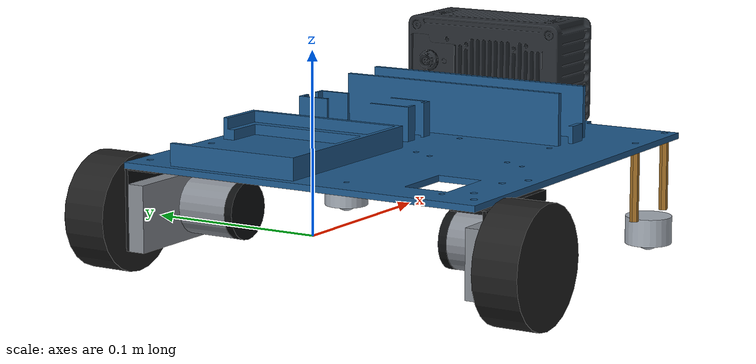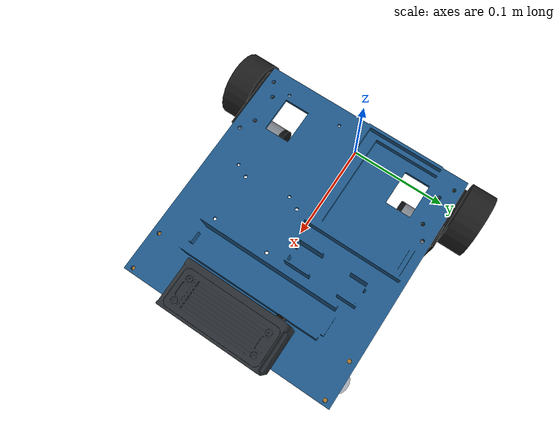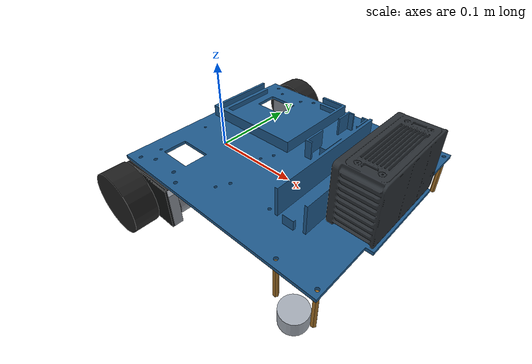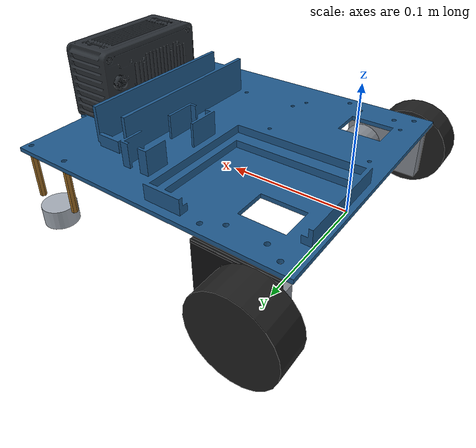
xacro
<?xml version="1.0"?>
<!-- CAD plate and user-specified wheel/ball geometry.
     Preview with approximate inertias and primitive collisions.
     No actuator connection or measured calibration. -->
<robot xmlns:xacro="http://www.ros.org/wiki/xacro" name="odin_explorer_preview">
  <xacro:property name="plate_length" value="0.24741600036621094"/>
  <xacro:property name="plate_height" value="0.062"/>
  <xacro:property name="plate_width" value="0.220"/>
  <xacro:property name="plate_thickness" value="0.0035"/>
  <xacro:property name="plate_upper_min_x" value="-0.11904653906822205"/>
  <xacro:property name="plate_upper_max_x" value="0.07495316863059998"/>
  <xacro:property name="plate_upper_min_y" value="-0.07358216494321823"/>
  <xacro:property name="plate_upper_max_y" value="0.10356252640485764"/>
  <xacro:property name="plate_upper_top" value="0.0335"/>
  <xacro:property name="wheel_radius" value="0.03325"/>
  <!-- User-adopted tire + hub mass, kg. Fasteners ignored by instruction. -->
  <xacro:property name="wheel_mass" value="0.046"/>
  <xacro:property name="wheel_width" value="0.026"/>
  <xacro:property name="wheel_track" value="0.257"/>
  <xacro:property name="rear_axle_inset" value="0.020"/>
  <xacro:property name="ball_radius" value="0.0079375"/>
  <!-- Front mounting-hole axes extracted from STEP, in the mesh convention.
       The ball center uses the pair midpoint per user instruction. -->
  <xacro:property name="ball_track" value="0.206223608603714"/>
  <xacro:property name="pillar_hole_spacing" value="0.0383"/>
  <!-- CY-15A product dimensions. Mounting follows CAD 38.3 mm per user instruction;
       product drawing 40 mm retained as a documented discrepancy. -->
  <!-- User-selected mean of 29 g and 42 g product variants; excludes pillars. -->
  <xacro:property name="caster_mass" value="0.0355"/>
  <xacro:property name="caster_height" value="0.020"/>
  <xacro:property name="housing_height" value="0.016"/>
  <xacro:property name="housing_radius" value="0.0135"/>
  <!-- 4.5 mm across flats confirmed by the user. -->
  <xacro:arg name="pillar_across_flats" default="0.0045"/>
  <xacro:property name="pillar_width" value="$(arg pillar_across_flats)"/>
  <xacro:property name="pillar_length" value="${plate_height-caster_height}"/>
  <xacro:property name="ball_front_inset" value="0.031067559623974"/>
  <xacro:property name="plate_center_x" value="${plate_length/2-rear_axle_inset}"/>
  <xacro:property name="plate_bottom_z" value="${plate_height-wheel_radius}"/>
  <xacro:property name="ball_x" value="${plate_length-rear_axle_inset-ball_front_inset}"/>
  <xacro:property name="ball_z" value="${ball_radius-wheel_radius}"/>
  <material name="body"><color rgba="0.12 0.35 0.55 1"/></material>
  <material name="rubber"><color rgba="0.12 0.12 0.12 1"/></material>
  <material name="brass"><color rgba="0.65 0.45 0.16 1"/></material>
  <material name="steel"><color rgba="0.65 0.68 0.72 1"/></material>
  <!-- Control origin at rear axle center, x forward, y left, z up. -->
  <link name="base_link">
    <visual>
      <origin xyz="${plate_center_x} 0 ${plate_bottom_z}" rpy="0 0 0"/>
      <geometry><mesh filename="package://explorer_description/meshes/chassis_plate.stl"/></geometry>
      <material name="body"/>
    </visual>
    <collision name="plate_slab_collision">
      <origin xyz="${plate_center_x} 0 ${plate_bottom_z+plate_thickness/2}"/>
      <geometry><box size="${plate_length} ${plate_width} ${plate_thickness}"/></geometry>
    </collision>
    <collision name="plate_raised_envelope_collision">
      <origin xyz="${plate_center_x+(plate_upper_min_x+plate_upper_max_x)/2} ${(plate_upper_min_y+plate_upper_max_y)/2} ${plate_bottom_z+(plate_thickness+plate_upper_top)/2}"/>
      <geometry><box size="${plate_upper_max_x-plate_upper_min_x} ${plate_upper_max_y-plate_upper_min_y} ${plate_upper_top-plate_thickness}"/></geometry>
    </collision>
  </link>
  <xacro:macro name="drive_wheel" params="side y">
    <link name="${side}_wheel_link">
      <!-- Uniform solid cylinder approximation, axle along Y. -->
      <inertial>
        <origin xyz="0 0 0"/>
        <mass value="${wheel_mass}"/>
        <inertia ixx="${wheel_mass*(3*wheel_radius*wheel_radius+wheel_width*wheel_width)/12}"
          iyy="${wheel_mass*wheel_radius*wheel_radius/2}"
          izz="${wheel_mass*(3*wheel_radius*wheel_radius+wheel_width*wheel_width)/12}"
          ixy="0" ixz="0" iyz="0"/>
      </inertial>
      <visual>
        <origin rpy="${pi/2} 0 0"/>
        <geometry><cylinder radius="${wheel_radius}" length="${wheel_width}"/></geometry>
        <material name="rubber"/>
      </visual>
      <collision name="${side}_wheel_collision">
        <origin rpy="${pi/2} 0 0"/>
        <geometry><cylinder radius="${wheel_radius}" length="${wheel_width}"/></geometry>
      </collision>
    </link>
    <joint name="${side}_wheel_joint" type="continuous">
      <parent link="base_link"/><child link="${side}_wheel_link"/>
      <origin xyz="0 ${y} 0"/><axis xyz="0 1 0"/>
    </joint>
  </xacro:macro>
  <xacro:drive_wheel side="left" y="${wheel_track/2}"/>
  <xacro:drive_wheel side="right" y="${-wheel_track/2}"/>
  <xacro:include filename="motor_assembly.xacro"/>
  <xacro:motor_assembly side="left" sign="1"/>
  <xacro:motor_assembly side="right" sign="-1"/>
  <!-- Effective hex bodies; threads, nuts and seams are omitted. -->
  <xacro:macro name="pillar_mount" params="side end x y">
    <link name="${side}_${end}_pillar_mount_link">
      <visual>
        <geometry><mesh filename="package://explorer_description/meshes/standoff_unit_hex.stl"
          scale="${pillar_width} ${pillar_width} ${pillar_length}"/></geometry>
        <material name="brass"/>
      </visual>
      <!-- Circumscribed cylinder around the hex; top remains at mount Z=0. -->
      <collision name="${side}_${end}_pillar_collision">
        <origin xyz="0 0 ${-pillar_length/2}"/>
        <geometry><cylinder radius="${pillar_width/sqrt(3)}" length="${pillar_length}"/></geometry>
      </collision>
    </link>
    <joint name="${side}_${end}_pillar_mount_joint" type="fixed">
      <parent link="base_link"/><child link="${side}_${end}_pillar_mount_link"/>
      <origin xyz="${x} ${y} ${plate_bottom_z}"/>
    </joint>
  </xacro:macro>
  <xacro:macro name="pillar_pair" params="side y">
    <xacro:pillar_mount side="${side}" end="front" x="${ball_x+pillar_hole_spacing/2}" y="${y}"/>
    <xacro:pillar_mount side="${side}" end="rear" x="${ball_x-pillar_hole_spacing/2}" y="${y}"/>
  </xacro:macro>
  <xacro:pillar_pair side="left" y="${ball_track/2}"/>
  <xacro:pillar_pair side="right" y="${-ball_track/2}"/>
  <xacro:macro name="caster" params="side y">
    <link name="front_${side}_caster_link">
      <!-- Lump ball + housing + flange mass here once. Uniform cylinder
           COM/inertia approximation, axis Z, full assembly height.
           Not measured; no separate rolling-ball mass distribution. -->
      <inertial>
        <origin xyz="0 0 ${caster_height/2-ball_radius}"/>
        <mass value="${caster_mass}"/>
        <inertia
          ixx="${caster_mass*(3*housing_radius*housing_radius+caster_height*caster_height)/12}"
          iyy="${caster_mass*(3*housing_radius*housing_radius+caster_height*caster_height)/12}"
          izz="${caster_mass*housing_radius*housing_radius/2}"
          ixy="0" ixz="0" iyz="0"/>
      </inertial>
      <visual><geometry><sphere radius="${ball_radius}"/></geometry><material name="steel"/></visual>
      <collision name="${side}_ball_collision">
        <geometry><sphere radius="${ball_radius}"/></geometry>
      </collision>
      <visual>
        <origin xyz="0 0 ${caster_height-ball_radius-housing_height/2}"/>
        <geometry><cylinder radius="${housing_radius}" length="${housing_height}"/></geometry>
        <material name="steel"/>
      </visual>
      <collision name="${side}_ball_housing_collision">
        <origin xyz="0 0 ${caster_height-ball_radius-housing_height/2}"/>
        <geometry><cylinder radius="${housing_radius}" length="${housing_height}"/></geometry>
      </collision>
    </link>
    <joint name="front_${side}_caster_mount" type="fixed">
      <parent link="base_link"/><child link="front_${side}_caster_link"/>
      <origin xyz="${ball_x} ${y} ${ball_z}"/>
    </joint>
  </xacro:macro>
  <xacro:caster side="left" y="${ball_track/2}"/>
  <xacro:caster side="right" y="${-ball_track/2}"/>
  <xacro:include filename="odin1.xacro"/>
  <xacro:odin1_assembly mount_x="${plate_center_x+0.1255389526560728-(plate_length/2-0.100)}"
    mount_y="0.000257644845562" mount_z="${plate_bottom_z+0.0035}"/>
</robot>

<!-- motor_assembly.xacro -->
<robot xmlns:xacro="http://www.ros.org/wiki/xacro">
  <xacro:property name="motor_mass" value="0.170"/>
  <xacro:property name="motor_bracket_mass" value="0.047"/>
  <xacro:macro name="estimated_box_inertia" params="mass x y z sx sy sz">
    <inertial>
      <origin xyz="${x} ${y} ${z}"/>
      <mass value="${mass}"/>
      <inertia ixx="${mass*(sy*sy+sz*sz)/12}" ixy="0" ixz="0"
               iyy="${mass*(sx*sx+sz*sz)/12}" iyz="0"
               izz="${mass*(sx*sx+sy*sy)/12}"/>
    </inertial>
  </xacro:macro>
  <xacro:property name="motor_axis_offset" value="0.035"/>
  <xacro:property name="motor_diameter" value="0.0326"/>
  <xacro:property name="encoder_diameter" value="0.0328"/>
  <xacro:property name="motor_total_depth" value="0.0455"/>
  <xacro:property name="gearbox_length" value="0.0645"/>
  <xacro:property name="gearbox_height" value="0.038"/>
  <xacro:property name="shaft_diameter" value="0.006"/>
  <xacro:property name="shaft_length" value="0.0145"/>
  <!-- ASSUMED visualization values; edit after actual measurement. -->
  <xacro:property name="assumed_gearbox_depth" value="0.010"/>
  <xacro:property name="assumed_encoder_depth" value="0.005"/>
  <xacro:property name="assumed_wheel_gap" value="0.004"/>
  <xacro:property name="assumed_bracket_thickness" value="0.002"/>
  <xacro:property name="assumed_bracket_length" value="0.0643"/>
  <xacro:property name="assumed_bracket_reach" value="0.0207"/>
  <!-- Gearbox rectangle centered halfway between axes (ASSUMPTION).
       Bracket is an inferred L profile, no bolt holes, not fabrication geometry. -->
  <material name="motor_metal"><color rgba="0.52 0.54 0.57 1"/></material>
  <material name="motor_black"><color rgba="0.055 0.06 0.065 1"/></material>
  <xacro:macro name="motor_assembly" params="side sign">
    <xacro:property name="outer_y" value="${wheel_track/2-wheel_width/2-assumed_wheel_gap}"/>
    <xacro:property name="can_depth" value="${motor_total_depth-assumed_gearbox_depth-assumed_encoder_depth}"/>
    <xacro:property name="bracket_height" value="${plate_bottom_z+gearbox_height/2}"/>
    <link name="${side}_motor_link">
      <!-- Lump entire motor assembly into this fixed link. Rotating internal
           inertia and separate shaft mass are not modeled at this stage. -->
      <xacro:estimated_box_inertia mass="${motor_mass}"
        x="${motor_axis_offset/2}" y="${-sign*motor_total_depth/2}" z="0"
        sx="${gearbox_length}" sy="${motor_total_depth}" sz="${gearbox_height}"/>
      <visual name="gearbox_envelope">
        <origin xyz="${motor_axis_offset/2} ${-sign*assumed_gearbox_depth/2} 0"/>
        <geometry><box size="${gearbox_length} ${assumed_gearbox_depth} ${gearbox_height}"/></geometry>
        <material name="motor_metal"/>
      </visual>
      <collision name="${side}_gearbox_envelope_collision">
        <origin xyz="${motor_axis_offset/2} ${-sign*assumed_gearbox_depth/2} 0"/>
        <geometry><box size="${gearbox_length} ${assumed_gearbox_depth} ${gearbox_height}"/></geometry>
      </collision>
      <visual name="motor_can">
        <origin xyz="${motor_axis_offset} ${-sign*(assumed_gearbox_depth+can_depth/2)} 0" rpy="${pi/2} 0 0"/>
        <geometry><cylinder radius="${motor_diameter/2}" length="${can_depth}"/></geometry>
        <material name="motor_metal"/>
      </visual>
      <collision name="${side}_motor_can_collision">
        <origin xyz="${motor_axis_offset} ${-sign*(assumed_gearbox_depth+can_depth/2)} 0" rpy="${pi/2} 0 0"/>
        <geometry><cylinder radius="${motor_diameter/2}" length="${can_depth}"/></geometry>
      </collision>
      <visual name="gmr_cover">
        <origin xyz="${motor_axis_offset} ${-sign*(motor_total_depth-assumed_encoder_depth/2)} 0" rpy="${pi/2} 0 0"/>
        <geometry><cylinder radius="${encoder_diameter/2}" length="${assumed_encoder_depth}"/></geometry>
        <material name="motor_black"/>
      </visual>
      <collision name="${side}_gmr_cover_collision">
        <origin xyz="${motor_axis_offset} ${-sign*(motor_total_depth-assumed_encoder_depth/2)} 0" rpy="${pi/2} 0 0"/>
        <geometry><cylinder radius="${encoder_diameter/2}" length="${assumed_encoder_depth}"/></geometry>
      </collision>
    </link>
    <joint name="${side}_motor_mount" type="fixed">
      <parent link="base_link"/><child link="${side}_motor_link"/>
      <origin xyz="0 ${sign*outer_y} 0"/>
    </joint>
    <link name="${side}_motor_bracket_link">
      <!-- Uniform L-bracket bounding-box estimate, not a measured COM. -->
      <xacro:estimated_box_inertia mass="${motor_bracket_mass}"
        x="${motor_axis_offset/2}"
        y="${sign*(assumed_bracket_thickness-assumed_bracket_reach/2)}"
        z="${(plate_bottom_z-gearbox_height/2)/2}"
        sx="${assumed_bracket_length}" sy="${assumed_bracket_reach}" sz="${bracket_height}"/>
      <visual name="vertical_web">
        <origin xyz="${motor_axis_offset/2} ${sign*assumed_bracket_thickness/2} ${(plate_bottom_z-gearbox_height/2)/2}"/>
        <geometry><box size="${assumed_bracket_length} ${assumed_bracket_thickness} ${bracket_height}"/></geometry>
        <material name="motor_black"/>
      </visual>
      <collision name="${side}_vertical_web_collision">
        <origin xyz="${motor_axis_offset/2} ${sign*assumed_bracket_thickness/2} ${(plate_bottom_z-gearbox_height/2)/2}"/>
        <geometry><box size="${assumed_bracket_length} ${assumed_bracket_thickness} ${bracket_height}"/></geometry>
      </collision>
      <visual name="top_flange">
        <origin xyz="${motor_axis_offset/2} ${sign*(assumed_bracket_thickness-assumed_bracket_reach/2)} ${plate_bottom_z-assumed_bracket_thickness/2}"/>
        <geometry><box size="${assumed_bracket_length} ${assumed_bracket_reach} ${assumed_bracket_thickness}"/></geometry>
        <material name="motor_black"/>
      </visual>
      <collision name="${side}_top_flange_collision">
        <origin xyz="${motor_axis_offset/2} ${sign*(assumed_bracket_thickness-assumed_bracket_reach/2)} ${plate_bottom_z-assumed_bracket_thickness/2}"/>
        <geometry><box size="${assumed_bracket_length} ${assumed_bracket_reach} ${assumed_bracket_thickness}"/></geometry>
      </collision>
    </link>
    <joint name="${side}_motor_bracket_mount" type="fixed">
      <parent link="${side}_motor_link"/><child link="${side}_motor_bracket_link"/>
    </joint>
    <!-- Shaft follows the wheel, not the stationary motor housing.
         Round shaft approximation; D flat and hub engagement are omitted. -->
    <link name="${side}_output_shaft_link">
      <visual>
        <origin xyz="0 ${sign*(outer_y+shaft_length/2-wheel_track/2)} 0" rpy="${pi/2} 0 0"/>
        <geometry><cylinder radius="${shaft_diameter/2}" length="${shaft_length}"/></geometry>
        <material name="motor_metal"/>
      </visual>
      <collision name="${side}_output_shaft_collision">
        <origin xyz="0 ${sign*(outer_y+shaft_length/2-wheel_track/2)} 0" rpy="${pi/2} 0 0"/>
        <geometry><cylinder radius="${shaft_diameter/2}" length="${shaft_length}"/></geometry>
      </collision>
    </link>
    <joint name="${side}_output_shaft_mount" type="fixed">
      <parent link="${side}_wheel_link"/><child link="${side}_output_shaft_link"/>
    </joint>
  </xacro:macro>
</robot>

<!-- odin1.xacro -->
<robot xmlns:xacro="http://www.ros.org/wiki/xacro">
  <xacro:macro name="odin1_assembly" params="mount_x mount_y mount_z">
    <link name="odin_link">
      <visual>
        <geometry><mesh filename="package://explorer_description/meshes/odin1.stl"/></geometry>
        <material name="odin_shell"><color rgba="0.16 0.18 0.20 1"/></material>
      </visual>
      <!-- Full CAD bounds, including connectors; conservative solid envelope. -->
      <collision name="odin_body_collision">
        <origin xyz="-0.0036 0 0.031"/>
        <geometry><box size="0.0464 0.100 0.062"/></geometry>
      </collision>
      <!-- Estimated uniform body box COM/inertia; manufacturer's mass only.
           Body CAD depth -3..40 mm; hole-group midpoint depth 20.4 mm. -->
      <inertial>
        <origin xyz="-0.0019 0 0.031"/>
        <mass value="0.280"/>
        <inertia ixx="${0.280*(0.100**2+0.062**2)/12}" ixy="0" ixz="0"
                 iyy="${0.280*(0.043**2+0.062**2)/12}" iyz="0"
                 izz="${0.280*(0.043**2+0.100**2)/12}"/>
      </inertial>
    </link>
    <joint name="odin_mount" type="fixed">
      <parent link="base_link"/><child link="odin_link"/>
      <origin xyz="${mount_x} ${mount_y} ${mount_z}"/>
    </joint>
  </xacro:macro>
</robot>
